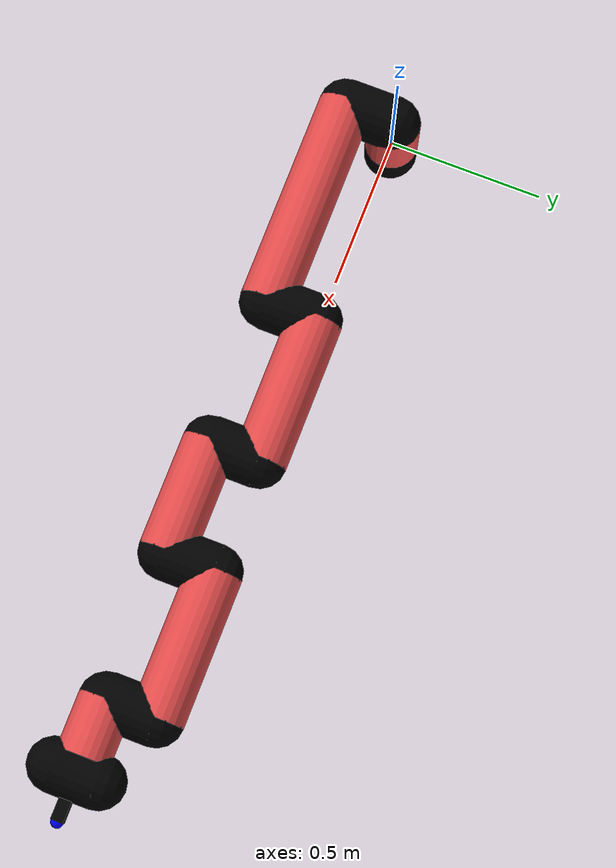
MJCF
<mujoco model="manipulator">
		<compiler angle="degree" coordinate="local" inertiafromgeom="auto" meshdir="meshes/"/>
		<option gravity="0 0 0" integrator="RK4" iterations="30" timestep="0.01"/>

		<default>
		<joint armature="1" limited="true" stiffness="10" damping="15" frictionloss="5.0"/>
		<geom conaffinity="1" condim="3" contype="1" friction=".5 .1 .1" margin="0.002"/>
		<motor ctrllimited="true"/>
		<position ctrllimited="true"/>
		</default>

		<asset>
		<texture builtin="gradient" height="100" rgb1="1.0 1.0 1.0" rgb2="1.0 1.0 1.0" type="skybox" width="100"/>
		<texture builtin="flat" height="32" name="arm_tex" rgb1="0.9 0.3 0.3" type="2d" width="32"/>
		<texture builtin="flat" height="32" name="gripper_tex" rgb1="0.0 0.0 0.0" type="cube" width="32"/>

		<material name="arm_mat" shininess="0.1" specular="0.1" texture="arm_tex"/>
		<material name="gripper_mat" shininess="1" specular="1" texture="gripper_tex"/>
		</asset>

		<worldbody>
		<light cutoff="45" diffuse=".8 .8 .8" dir="0 0.16 -1" directional="false" name="light" pos="0 -2.0 8.0" specular="0.3 0.3 0.3"/>

		<body name="base_link" pos="0 0 -0.1">
		<geom fromto="0 0 0 0 0 0.1" material="arm_mat" name="base_link" rgba="0.0 0.0 0.0 1" size="0.085" type="cylinder"/>
		</body>

		<body name="l1" pos="0 0 0">
<geom fromto="0 0 0 0 0 0.18" material="arm_mat" name="l1" rgba="0.9 0.3 0.3 1" size="0.085" type="cylinder"/>
<geom fromto="0 0 0.18 0 -0.16 0.18" material="arm_mat" name="l1_ex" rgba="0.0 0.0 0.0 1" size="0.085" type="capsule"/>
<joint axis="0 0 1" name="j1" pos="0 0 0" range="-90 90" damping="38.28" frictionloss="4.49"/>

<body name="l2" pos="0 -0.16 0.18">
<geom fromto="0 0 0 0.68 0 0" material="arm_mat" name="l2" rgba="0.9 0.3 0.3 1" size="0.085" type="cylinder"/>
<geom fromto="0.68 0 0 0.68 0.16 0" material="arm_mat" name="l2_ex" rgba="0.0 0.0 0.0 1" size="0.085" type="capsule"/>
<joint axis="0.0 1.0 0.0" name="j2" pos="0 0 0" range="-90 60" damping="34.62" frictionloss="7.21"/>

<body name="l3" pos="0.68 0.16 0">
<geom fromto="0 0 0 0.47 0 0" material="arm_mat" name="l3" rgba="0.9 0.3 0.3 1" size="0.085" type="cylinder"/>
<geom fromto="0.47 0 0 0.47 -0.16 0" material="arm_mat" name="l3_ex" rgba="0.0 0.0 0.0 1" size="0.085" type="capsule"/>
<joint axis="0.0 1.0 0.0" name="j3" pos="0 0 0" range="-30 60" damping="17.01" frictionloss="13.31"/>

<body name="l4" pos="0.47 -0.16 0">
<geom fromto="0 0 0 0.36 0 0" material="arm_mat" name="l4" rgba="0.9 0.3 0.3 1" size="0.085" type="cylinder"/>
<geom fromto="0.36 0 0 0.36 0.16 0" material="arm_mat" name="l4_ex" rgba="0.0 0.0 0.0 1" size="0.085" type="capsule"/>
<joint axis="0.0 1.0 0.0" name="j4" pos="0 0 0" range="-30 60" damping="37.21" frictionloss="9.34"/>

<body name="l5" pos="0.36 0.16 0">
<geom fromto="0 0 0 0.47 0 0" material="arm_mat" name="l5" rgba="0.9 0.3 0.3 1" size="0.085" type="cylinder"/>
<geom fromto="0.47 0 0 0.47 -0.16 0" material="arm_mat" name="l5_ex" rgba="0.0 0.0 0.0 1" size="0.085" type="capsule"/>
<joint axis="0.0 1.0 0.0" name="j5" pos="0 0 0" range="-30 60" damping="25.76" frictionloss="13.63"/>

<body name="l6" pos="0.47 -0.16 0">
<geom fromto="0 0 0 0.18 0 0" material="arm_mat" name="l6" rgba="0.9 0.3 0.3 1" size="0.085" type="cylinder"/>
<joint axis="0.0 1.0 0.0" name="j6" pos="0 0 0" range="-30 60" damping="23.72" frictionloss="5.52"/>

<body name="gripper" pos="0.18 0 0">
<geom fromto="0.05 -0.07 0 0.05 0.07 0" material="gripper_mat" name="gripper" rgba="0.0 0.0 0.0 1" size="0.085" type="capsule"/><joint axis="1 0 0" name="j7" pos="0 0 0" range="-90 90" damping="15" frictionloss="5.0"/><body name="finger" pos="0.1 0 0">
<geom fromto="0 0.0 0 0.1 0.0 0" material="gripper_mat" name="finger" rgba="0.0 0.0 0.0 1" size="0.020 0.06 0.06" type="box"/>
</body>
<site name="current" pos="0.2 0. 0.0" rgba="0. 0. 1.0 1" size="0.02" type="sphere"/>
</body>
</body>
</body>
</body>
</body>
</body>
</body>
</worldbody>
<actuator>
<motor ctrllimited="true" ctrlrange="-1.0 1.0" joint="j1" gear="126.2"/>
<motor ctrllimited="true" ctrlrange="-1.0 1.0" joint="j2" gear="119.63"/>
<motor ctrllimited="true" ctrlrange="-1.0 1.0" joint="j3" gear="112.83"/>
<motor ctrllimited="true" ctrlrange="-1.0 1.0" joint="j4" gear="120.73"/>
<motor ctrllimited="true" ctrlrange="-1.0 1.0" joint="j5" gear="73.56"/>
<motor ctrllimited="true" ctrlrange="-1.0 1.0" joint="j6" gear="119.25"/>
<motor ctrllimited="true" ctrlrange="-1.0 1.0" joint="j7" gear="80"/>
</actuator>
</mujoco>
